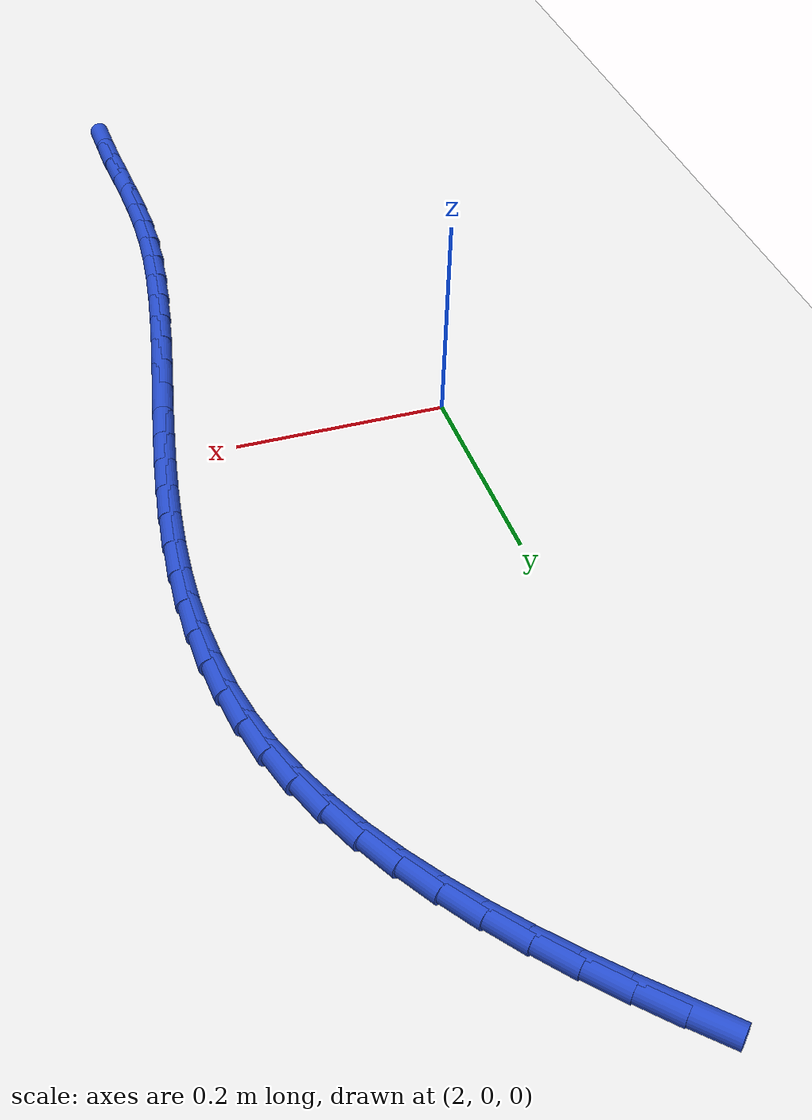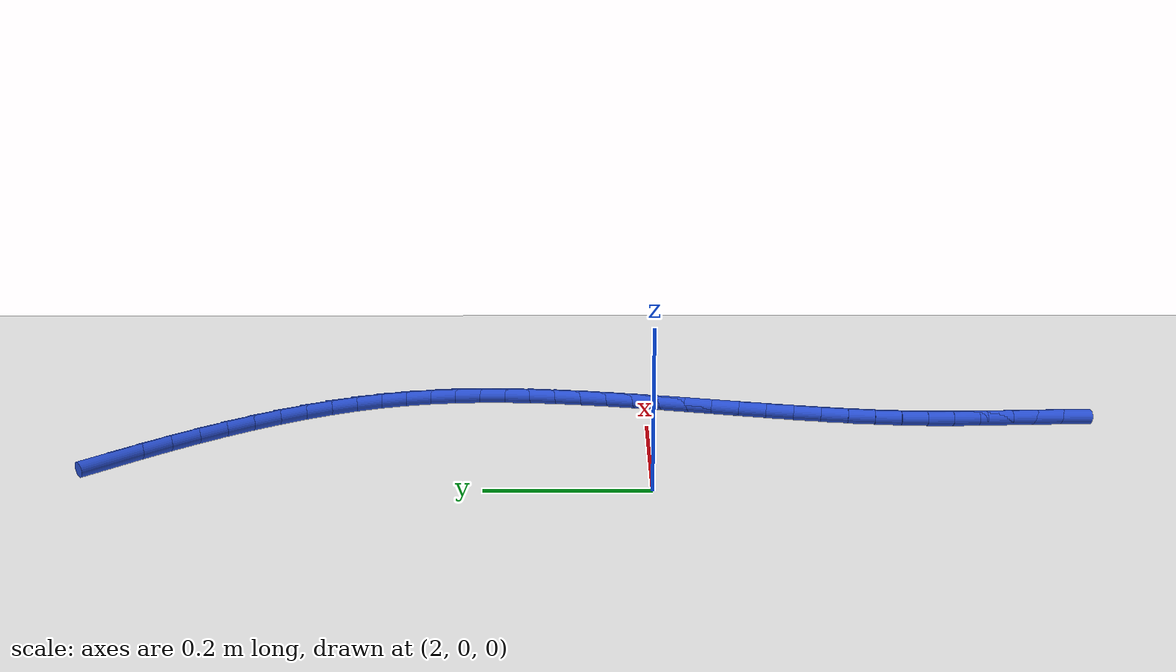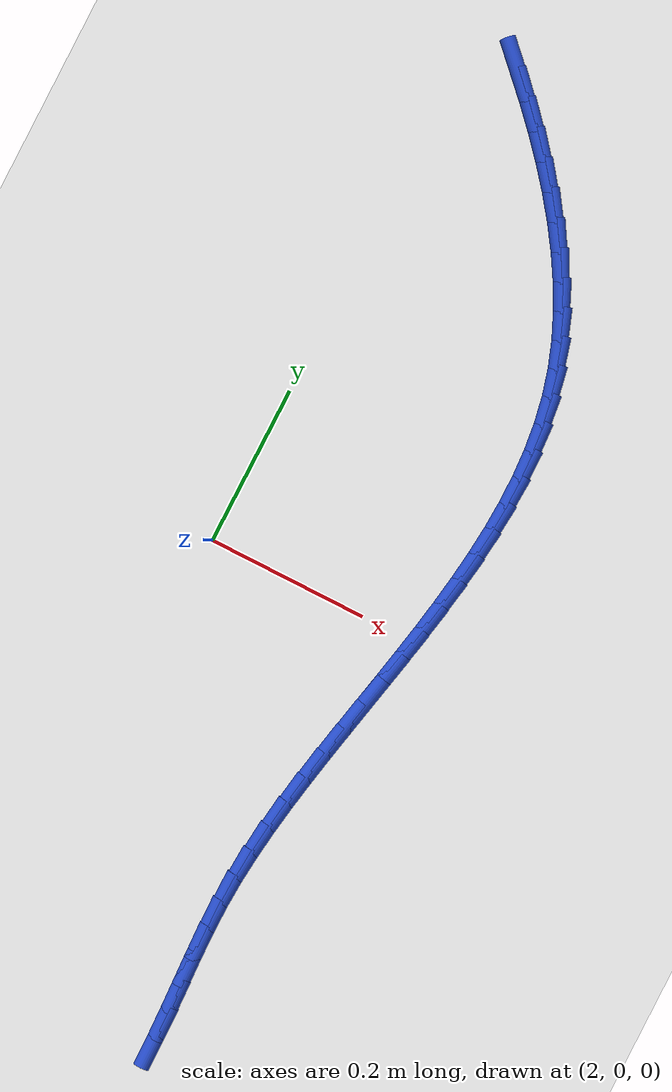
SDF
<sdf version="1.6">
 <world name="default">
  <model name="ground_plane">
   <static>1</static>
   <link name="link">
    <collision name="collision">
     <geometry><plane><normal>0 0 1</normal><size>100 100</size></plane></geometry>
     <surface><friction><ode><mu>100</mu><mu2>50</mu2></ode></friction></surface>
    </collision>
    <visual name="visual">
     <cast_shadows>0</cast_shadows>
     <geometry><plane><normal>0 0 1</normal><size>100 100</size></plane></geometry>
     <material>
      <script><uri>file://media/materials/scripts/gazebo.material</uri><name>Gazebo/WhiteGlow</name></script>
     </material>
    </visual>
   </link>
  </model>
  <model name="line">
   <link name="link_92">
    <pose>2.067893090069824 0.6623479860140783 0.01 0 1.57 -0.7875783322032616</pose>
    <collision name="collision">
     <geometry><cylinder><radius>0.01</radius><length>0.08</length></cylinder></geometry>
    </collision>
    <visual name="visual">
     <material>
      <script><name>Gazebo/Blue</name><uri>file://media/materials/scripts/gazebo.material</uri></script>
     </material>
     <geometry><cylinder><radius>0.01</radius><length>0.08</length></cylinder></geometry>
    </visual>
   </link>
   <link name="link_93">
    <pose>2.094315099491182 0.6358105158043227 0.01 0 1.57 -0.8160619041153886</pose>
    <collision name="collision">
     <geometry><cylinder><radius>0.01</radius><length>0.08</length></cylinder></geometry>
    </collision>
    <visual name="visual">
     <material>
      <script><name>Gazebo/Blue</name><uri>file://media/materials/scripts/gazebo.material</uri></script>
     </material>
     <geometry><cylinder><radius>0.01</radius><length>0.08</length></cylinder></geometry>
    </visual>
   </link>
   <link name="link_94">
    <pose>2.1199212520669173 0.6085838019604589 0.01 0 1.57 -0.8486348188519293</pose>
    <collision name="collision">
     <geometry><cylinder><radius>0.01</radius><length>0.08</length></cylinder></geometry>
    </collision>
    <visual name="visual">
     <material>
      <script><name>Gazebo/Blue</name><uri>file://media/materials/scripts/gazebo.material</uri></script>
     </material>
     <geometry><cylinder><radius>0.01</radius><length>0.08</length></cylinder></geometry>
    </visual>
   </link>
   <link name="link_95">
    <pose>2.144505699129006 0.5806754543240429 0.01 0 1.57 -0.8856682487214026</pose>
    <collision name="collision">
     <geometry><cylinder><radius>0.01</radius><length>0.08</length></cylinder></geometry>
    </collision>
    <visual name="visual">
     <material>
      <script><name>Gazebo/Blue</name><uri>file://media/materials/scripts/gazebo.material</uri></script>
     </material>
     <geometry><cylinder><radius>0.01</radius><length>0.08</length></cylinder></geometry>
    </visual>
   </link>
   <link name="link_96">
    <pose>2.167862592009421 0.5520930827366327 0.01 0 1.57 -0.9275819074144124</pose>
    <collision name="collision">
     <geometry><cylinder><radius>0.01</radius><length>0.08</length></cylinder></geometry>
    </collision>
    <visual name="visual">
     <material>
      <script><name>Gazebo/Blue</name><uri>file://media/materials/scripts/gazebo.material</uri></script>
     </material>
     <geometry><cylinder><radius>0.01</radius><length>0.08</length></cylinder></geometry>
    </visual>
   </link>
   <link name="link_97">
    <pose>2.1897860820401385 0.5228442970397854 0.01 0 1.57 -0.9748306888613834</pose>
    <collision name="collision">
     <geometry><cylinder><radius>0.01</radius><length>0.08</length></cylinder></geometry>
    </collision>
    <visual name="visual">
     <material>
      <script><name>Gazebo/Blue</name><uri>file://media/materials/scripts/gazebo.material</uri></script>
     </material>
     <geometry><cylinder><radius>0.01</radius><length>0.08</length></cylinder></geometry>
    </visual>
   </link>
   <link name="link_98">
    <pose>2.2100703205531307 0.4929367070750577 0.01 0 1.57 -1.027881347937429</pose>
    <collision name="collision">
     <geometry><cylinder><radius>0.01</radius><length>0.08</length></cylinder></geometry>
    </collision>
    <visual name="visual">
     <material>
      <script><name>Gazebo/Blue</name><uri>file://media/materials/scripts/gazebo.material</uri></script>
     </material>
     <geometry><cylinder><radius>0.01</radius><length>0.08</length></cylinder></geometry>
    </visual>
   </link>
   <link name="link_99">
    <pose>2.2285094588803727 0.46237792268400757 0.01 0 1.57 -1.0871748356607975</pose>
    <collision name="collision">
     <geometry><cylinder><radius>0.01</radius><length>0.08</length></cylinder></geometry>
    </collision>
    <visual name="visual">
     <material>
      <script><name>Gazebo/Blue</name><uri>file://media/materials/scripts/gazebo.material</uri></script>
     </material>
     <geometry><cylinder><radius>0.01</radius><length>0.08</length></cylinder></geometry>
    </visual>
   </link>
   <link name="link_100">
    <pose>2.2448976483538394 0.4311755537081912 0.01 0 1.57 -1.1530699916998193</pose>
    <collision name="collision">
     <geometry><cylinder><radius>0.01</radius><length>0.08</length></cylinder></geometry>
    </collision>
    <visual name="visual">
     <material>
      <script><name>Gazebo/Blue</name><uri>file://media/materials/scripts/gazebo.material</uri></script>
     </material>
     <geometry><cylinder><radius>0.01</radius><length>0.08</length></cylinder></geometry>
    </visual>
   </link>
   <link name="link_101">
    <pose>2.259029040305504 0.39933720998916694 0.01 0 1.57 -1.2257662623345156</pose>
    <collision name="collision">
     <geometry><cylinder><radius>0.01</radius><length>0.08</length></cylinder></geometry>
    </collision>
    <visual name="visual">
     <material>
      <script><name>Gazebo/Blue</name><uri>file://media/materials/scripts/gazebo.material</uri></script>
     </material>
     <geometry><cylinder><radius>0.01</radius><length>0.08</length></cylinder></geometry>
    </visual>
   </link>
   <link name="link_102">
    <pose>2.270697786067342 0.3668705013684911 0.01 0 1.57 -1.304494390391769</pose>
    <collision name="collision">
     <geometry><cylinder><radius>0.01</radius><length>0.08</length></cylinder></geometry>
    </collision>
    <visual name="visual">
     <material>
      <script><name>Gazebo/Blue</name><uri>file://media/materials/scripts/gazebo.material</uri></script>
     </material>
     <geometry><cylinder><radius>0.01</radius><length>0.08</length></cylinder></geometry>
    </visual>
   </link>
   <link name="link_103">
    <pose>2.279722694053912 0.3337856741863653 0.01 0 1.57 -1.3815243058138953</pose>
    <collision name="collision">
     <geometry><cylinder><radius>0.01</radius><length>0.08</length></cylinder></geometry>
    </collision>
    <visual name="visual">
     <material>
      <script><name>Gazebo/Blue</name><uri>file://media/materials/scripts/gazebo.material</uri></script>
     </material>
     <geometry><cylinder><radius>0.01</radius><length>0.08</length></cylinder></geometry>
    </visual>
   </link>
   <link name="link_104">
    <pose>2.286171929629211 0.3001196376802212 0.01 0 1.57 -1.4518539652871965</pose>
    <collision name="collision">
     <geometry><cylinder><radius>0.01</radius><length>0.08</length></cylinder></geometry>
    </collision>
    <visual name="visual">
     <material>
      <script><name>Gazebo/Blue</name><uri>file://media/materials/scripts/gazebo.material</uri></script>
     </material>
     <geometry><cylinder><radius>0.01</radius><length>0.08</length></cylinder></geometry>
    </visual>
   </link>
   <link name="link_105">
    <pose>2.2902584357442963 0.26592478166637334 0.01 0 1.57 -1.5149432790091728</pose>
    <collision name="collision">
     <geometry><cylinder><radius>0.01</radius><length>0.08</length></cylinder></geometry>
    </collision>
    <visual name="visual">
     <material>
      <script><name>Gazebo/Blue</name><uri>file://media/materials/scripts/gazebo.material</uri></script>
     </material>
     <geometry><cylinder><radius>0.01</radius><length>0.08</length></cylinder></geometry>
    </visual>
   </link>
   <link name="link_106">
    <pose>2.292196938253313 0.2312536866009452 0.01 0 1.57 -1.5706474510654747</pose>
    <collision name="collision">
     <geometry><cylinder><radius>0.01</radius><length>0.08</length></cylinder></geometry>
    </collision>
    <visual name="visual">
     <material>
      <script><name>Gazebo/Blue</name><uri>file://media/materials/scripts/gazebo.material</uri></script>
     </material>
     <geometry><cylinder><radius>0.01</radius><length>0.08</length></cylinder></geometry>
    </visual>
   </link>
   <link name="link_107">
    <pose>2.2922021630104017 0.19615893294006218 0.01 0 1.57 1.5225246220861943</pose>
    <collision name="collision">
     <geometry><cylinder><radius>0.01</radius><length>0.08</length></cylinder></geometry>
    </collision>
    <visual name="visual">
     <material>
      <script><name>Gazebo/Blue</name><uri>file://media/materials/scripts/gazebo.material</uri></script>
     </material>
     <geometry><cylinder><radius>0.01</radius><length>0.08</length></cylinder></geometry>
    </visual>
   </link>
   <link name="link_108">
    <pose>2.290488835869705 0.1606931011398476 0.01 0 1.57 1.481133414600551</pose>
    <collision name="collision">
     <geometry><cylinder><radius>0.01</radius><length>0.08</length></cylinder></geometry>
    </collision>
    <visual name="visual">
     <material>
      <script><name>Gazebo/Blue</name><uri>file://media/materials/scripts/gazebo.material</uri></script>
     </material>
     <geometry><cylinder><radius>0.01</radius><length>0.08</length></cylinder></geometry>
    </visual>
   </link>
   <link name="link_109">
    <pose>2.2872716826853643 0.12490877165642685 0.01 0 1.57 1.4464420823799065</pose>
    <collision name="collision">
     <geometry><cylinder><radius>0.01</radius><length>0.08</length></cylinder></geometry>
    </collision>
    <visual name="visual">
     <material>
      <script><name>Gazebo/Blue</name><uri>file://media/materials/scripts/gazebo.material</uri></script>
     </material>
     <geometry><cylinder><radius>0.01</radius><length>0.08</length></cylinder></geometry>
    </visual>
   </link>
   <link name="link_110">
    <pose>2.2827654293115223 0.0888585249459234 0.01 0 1.57 1.4181034969788746</pose>
    <collision name="collision">
     <geometry><cylinder><radius>0.01</radius><length>0.08</length></cylinder></geometry>
    </collision>
    <visual name="visual">
     <material>
      <script><name>Gazebo/Blue</name><uri>file://media/materials/scripts/gazebo.material</uri></script>
     </material>
     <geometry><cylinder><radius>0.01</radius><length>0.08</length></cylinder></geometry>
    </visual>
   </link>
   <link name="link_111">
    <pose>2.277184801602319 0.05259494146446249 0.01 0 1.57 1.395792625251321</pose>
    <collision name="collision">
     <geometry><cylinder><radius>0.01</radius><length>0.08</length></cylinder></geometry>
    </collision>
    <visual name="visual">
     <material>
      <script><name>Gazebo/Blue</name><uri>file://media/materials/scripts/gazebo.material</uri></script>
     </material>
     <geometry><cylinder><radius>0.01</radius><length>0.08</length></cylinder></geometry>
    </visual>
   </link>
   <link name="link_112">
    <pose>2.2707445254118994 0.016170601668168093 0.01 0 1.57 1.3792322398699386</pose>
    <collision name="collision">
     <geometry><cylinder><radius>0.01</radius><length>0.08</length></cylinder></geometry>
    </collision>
    <visual name="visual">
     <material>
      <script><name>Gazebo/Blue</name><uri>file://media/materials/scripts/gazebo.material</uri></script>
     </material>
     <geometry><cylinder><radius>0.01</radius><length>0.08</length></cylinder></geometry>
    </visual>
   </link>
   <link name="link_113">
    <pose>2.263659326594404 -0.020361913986835442 0.01 0 1.57 1.3682087107020249</pose>
    <collision name="collision">
     <geometry><cylinder><radius>0.01</radius><length>0.08</length></cylinder></geometry>
    </collision>
    <visual name="visual">
     <material>
      <script><name>Gazebo/Blue</name><uri>file://media/materials/scripts/gazebo.material</uri></script>
     </material>
     <geometry><cylinder><radius>0.01</radius><length>0.08</length></cylinder></geometry>
    </visual>
   </link>
   <link name="link_114">
    <pose>2.2561439310039733 -0.056950025044424604 0.01 0 1.57 1.3625813011093058</pose>
    <collision name="collision">
     <geometry><cylinder><radius>0.01</radius><length>0.08</length></cylinder></geometry>
    </collision>
    <visual name="visual">
     <material>
      <script><name>Gazebo/Blue</name><uri>file://media/materials/scripts/gazebo.material</uri></script>
     </material>
     <geometry><cylinder><radius>0.01</radius><length>0.08</length></cylinder></geometry>
    </visual>
   </link>
   <link name="link_115">
    <pose>2.248413064494752 -0.0935411510484733 0.01 0 1.57 1.3622874674639756</pose>
    <collision name="collision">
     <geometry><cylinder><radius>0.01</radius><length>0.08</length></cylinder></geometry>
    </collision>
    <visual name="visual">
     <material>
      <script><name>Gazebo/Blue</name><uri>file://media/materials/scripts/gazebo.material</uri></script>
     </material>
     <geometry><cylinder><radius>0.01</radius><length>0.08</length></cylinder></geometry>
    </visual>
   </link>
   <link name="link_116">
    <pose>2.2406814529208807 -0.1300827115428579 0.01 0 1.57 1.3673457520532168</pose>
    <collision name="collision">
     <geometry><cylinder><radius>0.01</radius><length>0.08</length></cylinder></geometry>
    </collision>
    <visual name="visual">
     <material>
      <script><name>Gazebo/Blue</name><uri>file://media/materials/scripts/gazebo.material</uri></script>
     </material>
     <geometry><cylinder><radius>0.01</radius><length>0.08</length></cylinder></geometry>
    </visual>
   </link>
   <link name="link_117">
    <pose>2.233163822136501 -0.1665221260714541 0.01 0 1.57 1.377857036132572</pose>
    <collision name="collision">
     <geometry><cylinder><radius>0.01</radius><length>0.08</length></cylinder></geometry>
    </collision>
    <visual name="visual">
     <material>
      <script><name>Gazebo/Blue</name><uri>file://media/materials/scripts/gazebo.material</uri></script>
     </material>
     <geometry><cylinder><radius>0.01</radius><length>0.08</length></cylinder></geometry>
    </visual>
   </link>
   <link name="link_118">
    <pose>2.2260748979957556 -0.2028068141781385 0.01 0 1.57 1.394004143452585</pose>
    <collision name="collision">
     <geometry><cylinder><radius>0.01</radius><length>0.08</length></cylinder></geometry>
    </collision>
    <visual name="visual">
     <material>
      <script><name>Gazebo/Blue</name><uri>file://media/materials/scripts/gazebo.material</uri></script>
     </material>
     <geometry><cylinder><radius>0.01</radius><length>0.08</length></cylinder></geometry>
    </visual>
   </link>
   <link name="link_119">
    <pose>2.2196294063527864 -0.23888419540678485 0.01 0 1.57 1.4160489716631877</pose>
    <collision name="collision">
     <geometry><cylinder><radius>0.01</radius><length>0.08</length></cylinder></geometry>
    </collision>
    <visual name="visual">
     <material>
      <script><name>Gazebo/Blue</name><uri>file://media/materials/scripts/gazebo.material</uri></script>
     </material>
     <geometry><cylinder><radius>0.01</radius><length>0.08</length></cylinder></geometry>
    </visual>
   </link>
   <link name="link_120">
    <pose>2.2140420730617345 -0.27470168930126954 0.01 0 1.57 1.4443253876679363</pose>
    <collision name="collision">
     <geometry><cylinder><radius>0.01</radius><length>0.08</length></cylinder></geometry>
    </collision>
    <visual name="visual">
     <material>
      <script><name>Gazebo/Blue</name><uri>file://media/materials/scripts/gazebo.material</uri></script>
     </material>
     <geometry><cylinder><radius>0.01</radius><length>0.08</length></cylinder></geometry>
    </visual>
   </link>
   <link name="link_121">
    <pose>2.2095276239767436 -0.3102067154054684 0.01 0 1.57 1.4792249933063912</pose>
    <collision name="collision">
     <geometry><cylinder><radius>0.01</radius><length>0.08</length></cylinder></geometry>
    </collision>
    <visual name="visual">
     <material>
      <script><name>Gazebo/Blue</name><uri>file://media/materials/scripts/gazebo.material</uri></script>
     </material>
     <geometry><cylinder><radius>0.01</radius><length>0.08</length></cylinder></geometry>
    </visual>
   </link>
   <link name="link_122">
    <pose>2.206300784951954 -0.34534669326325784 0.01 0 1.57 1.5211395771140264</pose>
    <collision name="collision">
     <geometry><cylinder><radius>0.01</radius><length>0.08</length></cylinder></geometry>
    </collision>
    <visual name="visual">
     <material>
      <script><name>Gazebo/Blue</name><uri>file://media/materials/scripts/gazebo.material</uri></script>
     </material>
     <geometry><cylinder><radius>0.01</radius><length>0.08</length></cylinder></geometry>
    </visual>
   </link>
   <link name="link_123">
    <pose>2.204575133705643 -0.38006972000270683 0.01 0 1.57 1.5645559075513162</pose>
    <collision name="collision">
     <geometry><cylinder><radius>0.01</radius><length>0.08</length></cylinder></geometry>
    </collision>
    <visual name="visual">
     <material>
      <script><name>Gazebo/Blue</name><uri>file://media/materials/scripts/gazebo.material</uri></script>
     </material>
     <geometry><cylinder><radius>0.01</radius><length>0.08</length></cylinder></geometry>
    </visual>
   </link>
   <link name="link_124">
    <pose>2.204360620593707 -0.4144440655351704 0.01 0 1.57 -1.5454638621126235</pose>
    <collision name="collision">
     <geometry><cylinder><radius>0.01</radius><length>0.08</length></cylinder></geometry>
    </collision>
    <visual name="visual">
     <material>
      <script><name>Gazebo/Blue</name><uri>file://media/materials/scripts/gazebo.material</uri></script>
     </material>
     <geometry><cylinder><radius>0.01</radius><length>0.08</length></cylinder></geometry>
    </visual>
   </link>
   <link name="link_125">
    <pose>2.205231011228529 -0.4487954186868281 0.01 0 1.57 -1.5283637883310417</pose>
    <collision name="collision">
     <geometry><cylinder><radius>0.01</radius><length>0.08</length></cylinder></geometry>
    </collision>
    <visual name="visual">
     <material>
      <script><name>Gazebo/Blue</name><uri>file://media/materials/scripts/gazebo.material</uri></script>
     </material>
     <geometry><cylinder><radius>0.01</radius><length>0.08</length></cylinder></geometry>
    </visual>
   </link>
   <link name="link_126">
    <pose>2.206703764565791 -0.4834826982367219 0.01 0 1.57 -1.525815964178158</pose>
    <collision name="collision">
     <geometry><cylinder><radius>0.01</radius><length>0.08</length></cylinder></geometry>
    </collision>
    <visual name="visual">
     <material>
      <script><name>Gazebo/Blue</name><uri>file://media/materials/scripts/gazebo.material</uri></script>
     </material>
     <geometry><cylinder><radius>0.01</radius><length>0.08</length></cylinder></geometry>
    </visual>
   </link>
   <link name="link_127">
    <pose>2.2082963395611745 -0.5188648229638912 0.01 0 1.57 -1.5370551748101684</pose>
    <collision name="collision">
     <geometry><cylinder><radius>0.01</radius><length>0.08</length></cylinder></geometry>
    </collision>
    <visual name="visual">
     <material>
      <script><name>Gazebo/Blue</name><uri>file://media/materials/scripts/gazebo.material</uri></script>
     </material>
     <geometry><cylinder><radius>0.01</radius><length>0.08</length></cylinder></geometry>
    </visual>
   </link>
   <link name="link_128">
    <pose>2.209526195170363 -0.5553007116473784 0.01 0 1.57 -1.5606352578819993</pose>
    <collision name="collision">
     <geometry><cylinder><radius>0.01</radius><length>0.08</length></cylinder></geometry>
    </collision>
    <visual name="visual">
     <material>
      <script><name>Gazebo/Blue</name><uri>file://media/materials/scripts/gazebo.material</uri></script>
     </material>
     <geometry><cylinder><radius>0.01</radius><length>0.08</length></cylinder></geometry>
    </visual>
   </link>
  </model>
 </world>
</sdf>
